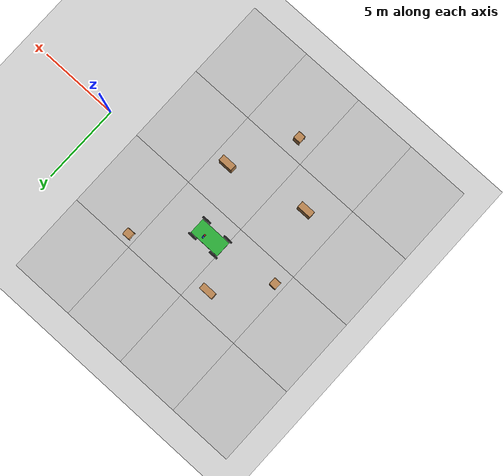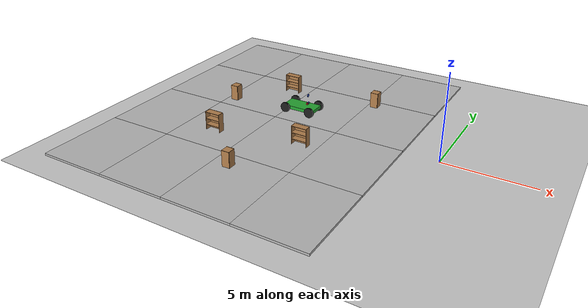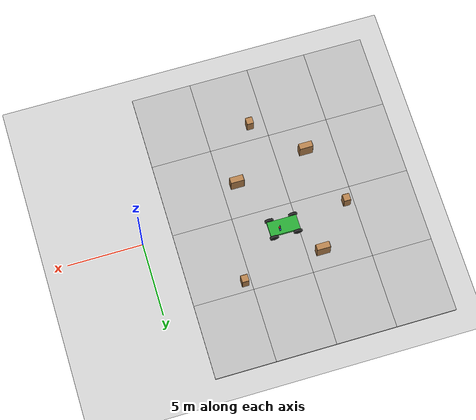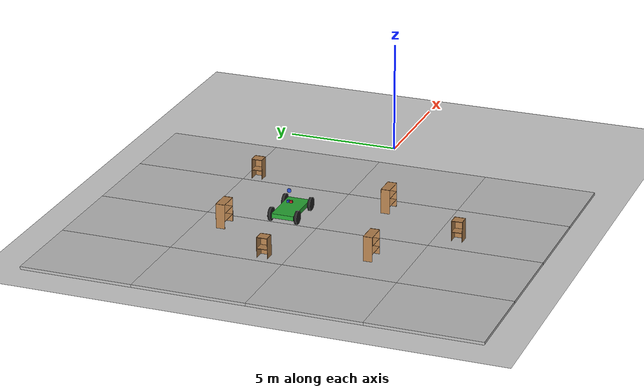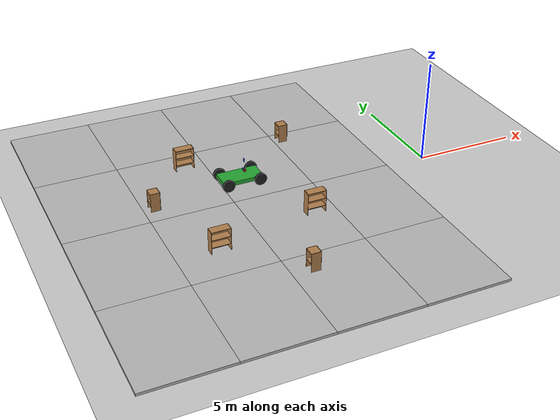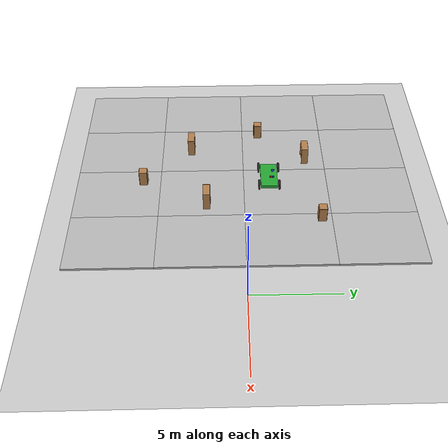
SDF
<sdf version="1.4">
 <world name="default">
  <model name="ground_plane">
   <static>1</static>
   <link name="link">
    <collision name="collision">
     <geometry><plane><normal>0 0 1</normal><size>100 100</size></plane></geometry>
     <surface><friction><ode><mu>100</mu><mu2>50</mu2></ode></friction></surface>
    </collision>
    <visual name="visual">
     <cast_shadows>0</cast_shadows>
     <geometry><plane><normal>0 0 1</normal><size>100 100</size></plane></geometry>
     <material>
      <script><uri>file://media/materials/scripts/gazebo.material</uri><name>Gazebo/Grey</name></script>
     </material>
    </visual>
    <velocity_decay><linear>0</linear><angular>0</angular></velocity_decay>
   </link>
  </model>
  <model name="mud_box">
   <static>1</static>
   <link name="link">
    <collision name="collision"><geometry><box><size>8 10 0.2</size></box></geometry></collision>
    <visual name="visual_1">
     <pose>-2 2.5 0 0 -0 0</pose>
     <cast_shadows>0</cast_shadows>
     <geometry><box><size>4 5 0.2</size></box></geometry>
     <material>
      <script>
       <uri>model://mud_box/materials/scripts</uri>
       <uri>model://mud_box/materials/textures</uri>
       <name>vrc/mud</name>
      </script>
     </material>
    </visual>
    <visual name="visual_2">
     <pose>2 2.5 0 0 -0 0</pose>
     <cast_shadows>0</cast_shadows>
     <geometry><box><size>4 5 0.2</size></box></geometry>
     <material>
      <script>
       <uri>model://mud_box/materials/scripts</uri>
       <uri>model://mud_box/materials/textures</uri>
       <name>vrc/mud</name>
      </script>
     </material>
    </visual>
    <visual name="visual_3">
     <pose>2 -2.5 0 0 -0 0</pose>
     <cast_shadows>0</cast_shadows>
     <geometry><box><size>4 5 0.2</size></box></geometry>
     <material>
      <script>
       <uri>model://mud_box/materials/scripts</uri>
       <uri>model://mud_box/materials/textures</uri>
       <name>vrc/mud</name>
      </script>
     </material>
    </visual>
    <visual name="visual_4">
     <pose>-2 -2.5 0 0 -0 0</pose>
     <cast_shadows>0</cast_shadows>
     <geometry><box><size>4 5 0.2</size></box></geometry>
     <material>
      <script>
       <uri>model://mud_box/materials/scripts</uri>
       <uri>model://mud_box/materials/textures</uri>
       <name>vrc/mud</name>
      </script>
     </material>
    </visual>
    <velocity_decay><linear>0</linear><angular>0</angular></velocity_decay>
   </link>
   <pose>-6 -5 0 0 -0 0</pose>
  </model>
  <model name="mud_box_0">
   <static>1</static>
   <link name="link">
    <collision name="collision"><geometry><box><size>8 10 0.2</size></box></geometry></collision>
    <visual name="visual_1">
     <pose>-2 2.5 0 0 -0 0</pose>
     <cast_shadows>0</cast_shadows>
     <geometry><box><size>4 5 0.2</size></box></geometry>
     <material>
      <script>
       <uri>model://mud_box/materials/scripts</uri>
       <uri>model://mud_box/materials/textures</uri>
       <name>vrc/mud</name>
      </script>
     </material>
    </visual>
    <visual name="visual_2">
     <pose>2 2.5 0 0 -0 0</pose>
     <cast_shadows>0</cast_shadows>
     <geometry><box><size>4 5 0.2</size></box></geometry>
     <material>
      <script>
       <uri>model://mud_box/materials/scripts</uri>
       <uri>model://mud_box/materials/textures</uri>
       <name>vrc/mud</name>
      </script>
     </material>
    </visual>
    <visual name="visual_3">
     <pose>2 -2.5 0 0 -0 0</pose>
     <cast_shadows>0</cast_shadows>
     <geometry><box><size>4 5 0.2</size></box></geometry>
     <material>
      <script>
       <uri>model://mud_box/materials/scripts</uri>
       <uri>model://mud_box/materials/textures</uri>
       <name>vrc/mud</name>
      </script>
     </material>
    </visual>
    <visual name="visual_4">
     <pose>-2 -2.5 0 0 -0 0</pose>
     <cast_shadows>0</cast_shadows>
     <geometry><box><size>4 5 0.2</size></box></geometry>
     <material>
      <script>
       <uri>model://mud_box/materials/scripts</uri>
       <uri>model://mud_box/materials/textures</uri>
       <name>vrc/mud</name>
      </script>
     </material>
    </visual>
    <velocity_decay><linear>0</linear><angular>0</angular></velocity_decay>
   </link>
   <pose>-6 5 0 0 -0 0</pose>
  </model>
  <model name="mud_box_5">
   <static>1</static>
   <link name="link">
    <collision name="collision"><geometry><box><size>8 10 0.2</size></box></geometry></collision>
    <visual name="visual_1">
     <pose>-2 2.5 0 0 -0 0</pose>
     <cast_shadows>0</cast_shadows>
     <geometry><box><size>4 5 0.2</size></box></geometry>
     <material>
      <script>
       <uri>model://mud_box/materials/scripts</uri>
       <uri>model://mud_box/materials/textures</uri>
       <name>vrc/mud</name>
      </script>
     </material>
    </visual>
    <visual name="visual_2">
     <pose>2 2.5 0 0 -0 0</pose>
     <cast_shadows>0</cast_shadows>
     <geometry><box><size>4 5 0.2</size></box></geometry>
     <material>
      <script>
       <uri>model://mud_box/materials/scripts</uri>
       <uri>model://mud_box/materials/textures</uri>
       <name>vrc/mud</name>
      </script>
     </material>
    </visual>
    <visual name="visual_3">
     <pose>2 -2.5 0 0 -0 0</pose>
     <cast_shadows>0</cast_shadows>
     <geometry><box><size>4 5 0.2</size></box></geometry>
     <material>
      <script>
       <uri>model://mud_box/materials/scripts</uri>
       <uri>model://mud_box/materials/textures</uri>
       <name>vrc/mud</name>
      </script>
     </material>
    </visual>
    <visual name="visual_4">
     <pose>-2 -2.5 0 0 -0 0</pose>
     <cast_shadows>0</cast_shadows>
     <geometry><box><size>4 5 0.2</size></box></geometry>
     <material>
      <script>
       <uri>model://mud_box/materials/scripts</uri>
       <uri>model://mud_box/materials/textures</uri>
       <name>vrc/mud</name>
      </script>
     </material>
    </visual>
    <velocity_decay><linear>0</linear><angular>0</angular></velocity_decay>
   </link>
   <pose>-14 5 0 0 -0 0</pose>
  </model>
  <model name="mud_box_6">
   <static>1</static>
   <link name="link">
    <collision name="collision"><geometry><box><size>8 10 0.2</size></box></geometry></collision>
    <visual name="visual_1">
     <pose>-2 2.5 0 0 -0 0</pose>
     <cast_shadows>0</cast_shadows>
     <geometry><box><size>4 5 0.2</size></box></geometry>
     <material>
      <script>
       <uri>model://mud_box/materials/scripts</uri>
       <uri>model://mud_box/materials/textures</uri>
       <name>vrc/mud</name>
      </script>
     </material>
    </visual>
    <visual name="visual_2">
     <pose>2 2.5 0 0 -0 0</pose>
     <cast_shadows>0</cast_shadows>
     <geometry><box><size>4 5 0.2</size></box></geometry>
     <material>
      <script>
       <uri>model://mud_box/materials/scripts</uri>
       <uri>model://mud_box/materials/textures</uri>
       <name>vrc/mud</name>
      </script>
     </material>
    </visual>
    <visual name="visual_3">
     <pose>2 -2.5 0 0 -0 0</pose>
     <cast_shadows>0</cast_shadows>
     <geometry><box><size>4 5 0.2</size></box></geometry>
     <material>
      <script>
       <uri>model://mud_box/materials/scripts</uri>
       <uri>model://mud_box/materials/textures</uri>
       <name>vrc/mud</name>
      </script>
     </material>
    </visual>
    <visual name="visual_4">
     <pose>-2 -2.5 0 0 -0 0</pose>
     <cast_shadows>0</cast_shadows>
     <geometry><box><size>4 5 0.2</size></box></geometry>
     <material>
      <script>
       <uri>model://mud_box/materials/scripts</uri>
       <uri>model://mud_box/materials/textures</uri>
       <name>vrc/mud</name>
      </script>
     </material>
    </visual>
    <velocity_decay><linear>0</linear><angular>0</angular></velocity_decay>
   </link>
   <pose>-14 -5 0 0 -0 0</pose>
  </model>
  <model name="cabinet">
   <static>1</static>
   <link name="cabinet_bottom_plate">
    <inertial>
     <pose>0 0 -1 0 -0 0</pose>
     <inertia><ixx>2.05</ixx><ixy>0</ixy><ixz>0</ixz><iyy>2.05</iyy><iyz>0</iyz><izz>2.05</izz></inertia>
     <mass>25</mass>
    </inertial>
    <collision name="cabinet_bottom_plate_geom">
     <pose>0 0 0.01 0 -0 0</pose>
     <geometry><box><size>0.45 0.45 0.02</size></box></geometry>
    </collision>
    <visual name="cabinet_bottom_plate_geom_visual">
     <pose>0 0 0.01 0 -0 0</pose>
     <geometry><box><size>0.45 0.45 0.02</size></box></geometry>
     <material>
      <script><uri>file://media/materials/scripts/gazebo.material</uri><name>Gazebo/Wood</name></script>
     </material>
    </visual>
    <collision name="cabinet_bottom_plate_geom_cabinet_back_plate">
     <pose>0.235 0 0.51 0 -0 0</pose>
     <geometry><box><size>0.02 0.45 1.02</size></box></geometry>
    </collision>
    <visual name="cabinet_bottom_plate_geom_cabinet_back_plate_visual">
     <pose>0.235 0 0.51 0 -0 0</pose>
     <geometry><box><size>0.02 0.45 1.02</size></box></geometry>
     <material>
      <script><uri>file://media/materials/scripts/gazebo.material</uri><name>Gazebo/Wood</name></script>
     </material>
    </visual>
    <collision name="cabinet_bottom_plate_geom_cabinet_left_plate">
     <pose>0 0.235 0.51 0 -0 0</pose>
     <geometry><box><size>0.45 0.02 1.02</size></box></geometry>
    </collision>
    <visual name="cabinet_bottom_plate_geom_cabinet_left_plate_visual">
     <pose>0 0.235 0.51 0 -0 0</pose>
     <geometry><box><size>0.45 0.02 1.02</size></box></geometry>
     <material>
      <script><uri>file://media/materials/scripts/gazebo.material</uri><name>Gazebo/Wood</name></script>
     </material>
    </visual>
    <collision name="cabinet_bottom_plate_geom_cabinet_middle_plate">
     <pose>0 0 0.51 0 -0 0</pose>
     <geometry><box><size>0.45 0.45 0.02</size></box></geometry>
    </collision>
    <visual name="cabinet_bottom_plate_geom_cabinet_middle_plate_visual">
     <pose>0 0 0.51 0 -0 0</pose>
     <geometry><box><size>0.45 0.45 0.02</size></box></geometry>
     <material>
      <script><uri>file://media/materials/scripts/gazebo.material</uri><name>Gazebo/Wood</name></script>
     </material>
    </visual>
    <collision name="cabinet_bottom_plate_geom_cabinet_right_plate">
     <pose>0 -0.235 0.51 0 -0 0</pose>
     <geometry><box><size>0.45 0.02 1.02</size></box></geometry>
    </collision>
    <visual name="cabinet_bottom_plate_geom_cabinet_right_plate_visual">
     <pose>0 -0.235 0.51 0 -0 0</pose>
     <geometry><box><size>0.45 0.02 1.02</size></box></geometry>
     <material>
      <script><uri>file://media/materials/scripts/gazebo.material</uri><name>Gazebo/Wood</name></script>
     </material>
    </visual>
    <collision name="cabinet_bottom_plate_geom_cabinet_top_plate">
     <pose>0 0 1.01 0 -0 0</pose>
     <geometry><box><size>0.45 0.45 0.02</size></box></geometry>
    </collision>
    <visual name="cabinet_bottom_plate_geom_cabinet_top_plate_visual">
     <pose>0 0 1.01 0 -0 0</pose>
     <geometry><box><size>0.45 0.45 0.02</size></box></geometry>
     <material>
      <script><uri>file://media/materials/scripts/gazebo.material</uri><name>Gazebo/Wood</name></script>
     </material>
    </visual>
    <velocity_decay><linear>0</linear><angular>0</angular></velocity_decay>
   </link>
   <pose>-13.4827 1 0 0 -0 0</pose>
  </model>
  <model name="cabinet_3">
   <static>1</static>
   <link name="cabinet_bottom_plate">
    <inertial>
     <pose>0 0 -1 0 -0 0</pose>
     <inertia><ixx>2.05</ixx><ixy>0</ixy><ixz>0</ixz><iyy>2.05</iyy><iyz>0</iyz><izz>2.05</izz></inertia>
     <mass>25</mass>
    </inertial>
    <collision name="cabinet_bottom_plate_geom">
     <pose>0 0 0.01 0 -0 0</pose>
     <geometry><box><size>0.45 0.45 0.02</size></box></geometry>
    </collision>
    <visual name="cabinet_bottom_plate_geom_visual">
     <pose>0 0 0.01 0 -0 0</pose>
     <geometry><box><size>0.45 0.45 0.02</size></box></geometry>
     <material>
      <script><uri>file://media/materials/scripts/gazebo.material</uri><name>Gazebo/Wood</name></script>
     </material>
    </visual>
    <collision name="cabinet_bottom_plate_geom_cabinet_back_plate">
     <pose>0.235 0 0.51 0 -0 0</pose>
     <geometry><box><size>0.02 0.45 1.02</size></box></geometry>
    </collision>
    <visual name="cabinet_bottom_plate_geom_cabinet_back_plate_visual">
     <pose>0.235 0 0.51 0 -0 0</pose>
     <geometry><box><size>0.02 0.45 1.02</size></box></geometry>
     <material>
      <script><uri>file://media/materials/scripts/gazebo.material</uri><name>Gazebo/Wood</name></script>
     </material>
    </visual>
    <collision name="cabinet_bottom_plate_geom_cabinet_left_plate">
     <pose>0 0.235 0.51 0 -0 0</pose>
     <geometry><box><size>0.45 0.02 1.02</size></box></geometry>
    </collision>
    <visual name="cabinet_bottom_plate_geom_cabinet_left_plate_visual">
     <pose>0 0.235 0.51 0 -0 0</pose>
     <geometry><box><size>0.45 0.02 1.02</size></box></geometry>
     <material>
      <script><uri>file://media/materials/scripts/gazebo.material</uri><name>Gazebo/Wood</name></script>
     </material>
    </visual>
    <collision name="cabinet_bottom_plate_geom_cabinet_middle_plate">
     <pose>0 0 0.51 0 -0 0</pose>
     <geometry><box><size>0.45 0.45 0.02</size></box></geometry>
    </collision>
    <visual name="cabinet_bottom_plate_geom_cabinet_middle_plate_visual">
     <pose>0 0 0.51 0 -0 0</pose>
     <geometry><box><size>0.45 0.45 0.02</size></box></geometry>
     <material>
      <script><uri>file://media/materials/scripts/gazebo.material</uri><name>Gazebo/Wood</name></script>
     </material>
    </visual>
    <collision name="cabinet_bottom_plate_geom_cabinet_right_plate">
     <pose>0 -0.235 0.51 0 -0 0</pose>
     <geometry><box><size>0.45 0.02 1.02</size></box></geometry>
    </collision>
    <visual name="cabinet_bottom_plate_geom_cabinet_right_plate_visual">
     <pose>0 -0.235 0.51 0 -0 0</pose>
     <geometry><box><size>0.45 0.02 1.02</size></box></geometry>
     <material>
      <script><uri>file://media/materials/scripts/gazebo.material</uri><name>Gazebo/Wood</name></script>
     </material>
    </visual>
    <collision name="cabinet_bottom_plate_geom_cabinet_top_plate">
     <pose>0 0 1.01 0 -0 0</pose>
     <geometry><box><size>0.45 0.45 0.02</size></box></geometry>
    </collision>
    <visual name="cabinet_bottom_plate_geom_cabinet_top_plate_visual">
     <pose>0 0 1.01 0 -0 0</pose>
     <geometry><box><size>0.45 0.45 0.02</size></box></geometry>
     <material>
      <script><uri>file://media/materials/scripts/gazebo.material</uri><name>Gazebo/Wood</name></script>
     </material>
    </visual>
    <velocity_decay><linear>0</linear><angular>0</angular></velocity_decay>
   </link>
   <pose>-9 -6 0 0 -0 0</pose>
  </model>
  <model name="cabinet_4">
   <static>1</static>
   <link name="cabinet_bottom_plate">
    <inertial>
     <pose>0 0 -1 0 -0 0</pose>
     <inertia><ixx>2.05</ixx><ixy>0</ixy><ixz>0</ixz><iyy>2.05</iyy><iyz>0</iyz><izz>2.05</izz></inertia>
     <mass>25</mass>
    </inertial>
    <collision name="cabinet_bottom_plate_geom">
     <pose>0 0 0.01 0 -0 0</pose>
     <geometry><box><size>0.45 0.45 0.02</size></box></geometry>
    </collision>
    <visual name="cabinet_bottom_plate_geom_visual">
     <pose>0 0 0.01 0 -0 0</pose>
     <geometry><box><size>0.45 0.45 0.02</size></box></geometry>
     <material>
      <script><uri>file://media/materials/scripts/gazebo.material</uri><name>Gazebo/Wood</name></script>
     </material>
    </visual>
    <collision name="cabinet_bottom_plate_geom_cabinet_back_plate">
     <pose>0.235 0 0.51 0 -0 0</pose>
     <geometry><box><size>0.02 0.45 1.02</size></box></geometry>
    </collision>
    <visual name="cabinet_bottom_plate_geom_cabinet_back_plate_visual">
     <pose>0.235 0 0.51 0 -0 0</pose>
     <geometry><box><size>0.02 0.45 1.02</size></box></geometry>
     <material>
      <script><uri>file://media/materials/scripts/gazebo.material</uri><name>Gazebo/Wood</name></script>
     </material>
    </visual>
    <collision name="cabinet_bottom_plate_geom_cabinet_left_plate">
     <pose>0 0.235 0.51 0 -0 0</pose>
     <geometry><box><size>0.45 0.02 1.02</size></box></geometry>
    </collision>
    <visual name="cabinet_bottom_plate_geom_cabinet_left_plate_visual">
     <pose>0 0.235 0.51 0 -0 0</pose>
     <geometry><box><size>0.45 0.02 1.02</size></box></geometry>
     <material>
      <script><uri>file://media/materials/scripts/gazebo.material</uri><name>Gazebo/Wood</name></script>
     </material>
    </visual>
    <collision name="cabinet_bottom_plate_geom_cabinet_middle_plate">
     <pose>0 0 0.51 0 -0 0</pose>
     <geometry><box><size>0.45 0.45 0.02</size></box></geometry>
    </collision>
    <visual name="cabinet_bottom_plate_geom_cabinet_middle_plate_visual">
     <pose>0 0 0.51 0 -0 0</pose>
     <geometry><box><size>0.45 0.45 0.02</size></box></geometry>
     <material>
      <script><uri>file://media/materials/scripts/gazebo.material</uri><name>Gazebo/Wood</name></script>
     </material>
    </visual>
    <collision name="cabinet_bottom_plate_geom_cabinet_right_plate">
     <pose>0 -0.235 0.51 0 -0 0</pose>
     <geometry><box><size>0.45 0.02 1.02</size></box></geometry>
    </collision>
    <visual name="cabinet_bottom_plate_geom_cabinet_right_plate_visual">
     <pose>0 -0.235 0.51 0 -0 0</pose>
     <geometry><box><size>0.45 0.02 1.02</size></box></geometry>
     <material>
      <script><uri>file://media/materials/scripts/gazebo.material</uri><name>Gazebo/Wood</name></script>
     </material>
    </visual>
    <collision name="cabinet_bottom_plate_geom_cabinet_top_plate">
     <pose>0 0 1.01 0 -0 0</pose>
     <geometry><box><size>0.45 0.45 0.02</size></box></geometry>
    </collision>
    <visual name="cabinet_bottom_plate_geom_cabinet_top_plate_visual">
     <pose>0 0 1.01 0 -0 0</pose>
     <geometry><box><size>0.45 0.45 0.02</size></box></geometry>
     <material>
      <script><uri>file://media/materials/scripts/gazebo.material</uri><name>Gazebo/Wood</name></script>
     </material>
    </visual>
    <velocity_decay><linear>0</linear><angular>0</angular></velocity_decay>
   </link>
   <pose>-5.58426 4.41881 0 0 -0 0</pose>
  </model>
  <model name="bookshelf">
   <static>1</static>
   <link name="link">
    <inertial><mass>1</mass></inertial>
    <collision name="back">
     <pose>0 0.005 0.6 0 -0 0</pose>
     <geometry><box><size>0.9 0.01 1.2</size></box></geometry>
    </collision>
    <visual name="visual1">
     <pose>0 0.005 0.6 0 -0 0</pose>
     <geometry><box><size>0.9 0.01 1.2</size></box></geometry>
     <material>
      <script><uri>file://media/materials/scripts/gazebo.material</uri><name>Gazebo/Wood</name></script>
     </material>
    </visual>
    <collision name="left_side">
     <pose>0.45 -0.195 0.6 0 -0 0</pose>
     <geometry><box><size>0.02 0.4 1.2</size></box></geometry>
    </collision>
    <visual name="visual2">
     <pose>0.45 -0.195 0.6 0 -0 0</pose>
     <geometry><box><size>0.02 0.4 1.2</size></box></geometry>
     <material>
      <script><uri>file://media/materials/scripts/gazebo.material</uri><name>Gazebo/Wood</name></script>
     </material>
    </visual>
    <collision name="right_side">
     <pose>-0.45 -0.195 0.6 0 -0 0</pose>
     <geometry><box><size>0.02 0.4 1.2</size></box></geometry>
    </collision>
    <visual name="visual3">
     <pose>-0.45 -0.195 0.6 0 -0 0</pose>
     <geometry><box><size>0.02 0.4 1.2</size></box></geometry>
     <material>
      <script><uri>file://media/materials/scripts/gazebo.material</uri><name>Gazebo/Wood</name></script>
     </material>
    </visual>
    <collision name="bottom">
     <pose>0 -0.195 0.03 0 -0 0</pose>
     <geometry><box><size>0.88 0.4 0.06</size></box></geometry>
    </collision>
    <visual name="visual4">
     <pose>0 -0.195 0.03 0 -0 0</pose>
     <geometry><box><size>0.88 0.4 0.06</size></box></geometry>
     <material>
      <script><uri>file://media/materials/scripts/gazebo.material</uri><name>Gazebo/Wood</name></script>
     </material>
    </visual>
    <collision name="top">
     <pose>0 -0.195 1.19 0 -0 0</pose>
     <geometry><box><size>0.88 0.4 0.02</size></box></geometry>
    </collision>
    <visual name="visual5">
     <pose>0 -0.195 1.19 0 -0 0</pose>
     <geometry><box><size>0.88 0.4 0.02</size></box></geometry>
     <material>
      <script><uri>file://media/materials/scripts/gazebo.material</uri><name>Gazebo/Wood</name></script>
     </material>
    </visual>
    <collision name="low_shelf">
     <pose>0 -0.195 0.43 0 -0 0</pose>
     <geometry><box><size>0.88 0.4 0.02</size></box></geometry>
    </collision>
    <visual name="visual6">
     <pose>0 -0.195 0.43 0 -0 0</pose>
     <geometry><box><size>0.88 0.4 0.02</size></box></geometry>
     <material>
      <script><uri>file://media/materials/scripts/gazebo.material</uri><name>Gazebo/Wood</name></script>
     </material>
    </visual>
    <collision name="high_shelf">
     <pose>0 -0.195 0.8 0 -0 0</pose>
     <geometry><box><size>0.88 0.4 0.02</size></box></geometry>
    </collision>
    <visual name="visual7">
     <pose>0 -0.195 0.8 0 -0 0</pose>
     <geometry><box><size>0.88 0.4 0.02</size></box></geometry>
     <material>
      <script><uri>file://media/materials/scripts/gazebo.material</uri><name>Gazebo/Wood</name></script>
     </material>
    </visual>
    <velocity_decay><linear>0</linear><angular>0</angular></velocity_decay>
   </link>
   <pose>-11 4 0 0 -0 0</pose>
  </model>
  <model name="bookshelf_0">
   <static>1</static>
   <link name="link">
    <inertial><mass>1</mass></inertial>
    <collision name="back">
     <pose>0 0.005 0.6 0 -0 0</pose>
     <geometry><box><size>0.9 0.01 1.2</size></box></geometry>
    </collision>
    <visual name="visual1">
     <pose>0 0.005 0.6 0 -0 0</pose>
     <geometry><box><size>0.9 0.01 1.2</size></box></geometry>
     <material>
      <script><uri>file://media/materials/scripts/gazebo.material</uri><name>Gazebo/Wood</name></script>
     </material>
    </visual>
    <collision name="left_side">
     <pose>0.45 -0.195 0.6 0 -0 0</pose>
     <geometry><box><size>0.02 0.4 1.2</size></box></geometry>
    </collision>
    <visual name="visual2">
     <pose>0.45 -0.195 0.6 0 -0 0</pose>
     <geometry><box><size>0.02 0.4 1.2</size></box></geometry>
     <material>
      <script><uri>file://media/materials/scripts/gazebo.material</uri><name>Gazebo/Wood</name></script>
     </material>
    </visual>
    <collision name="right_side">
     <pose>-0.45 -0.195 0.6 0 -0 0</pose>
     <geometry><box><size>0.02 0.4 1.2</size></box></geometry>
    </collision>
    <visual name="visual3">
     <pose>-0.45 -0.195 0.6 0 -0 0</pose>
     <geometry><box><size>0.02 0.4 1.2</size></box></geometry>
     <material>
      <script><uri>file://media/materials/scripts/gazebo.material</uri><name>Gazebo/Wood</name></script>
     </material>
    </visual>
    <collision name="bottom">
     <pose>0 -0.195 0.03 0 -0 0</pose>
     <geometry><box><size>0.88 0.4 0.06</size></box></geometry>
    </collision>
    <visual name="visual4">
     <pose>0 -0.195 0.03 0 -0 0</pose>
     <geometry><box><size>0.88 0.4 0.06</size></box></geometry>
     <material>
      <script><uri>file://media/materials/scripts/gazebo.material</uri><name>Gazebo/Wood</name></script>
     </material>
    </visual>
    <collision name="top">
     <pose>0 -0.195 1.19 0 -0 0</pose>
     <geometry><box><size>0.88 0.4 0.02</size></box></geometry>
    </collision>
    <visual name="visual5">
     <pose>0 -0.195 1.19 0 -0 0</pose>
     <geometry><box><size>0.88 0.4 0.02</size></box></geometry>
     <material>
      <script><uri>file://media/materials/scripts/gazebo.material</uri><name>Gazebo/Wood</name></script>
     </material>
    </visual>
    <collision name="low_shelf">
     <pose>0 -0.195 0.43 0 -0 0</pose>
     <geometry><box><size>0.88 0.4 0.02</size></box></geometry>
    </collision>
    <visual name="visual6">
     <pose>0 -0.195 0.43 0 -0 0</pose>
     <geometry><box><size>0.88 0.4 0.02</size></box></geometry>
     <material>
      <script><uri>file://media/materials/scripts/gazebo.material</uri><name>Gazebo/Wood</name></script>
     </material>
    </visual>
    <collision name="high_shelf">
     <pose>0 -0.195 0.8 0 -0 0</pose>
     <geometry><box><size>0.88 0.4 0.02</size></box></geometry>
    </collision>
    <visual name="visual7">
     <pose>0 -0.195 0.8 0 -0 0</pose>
     <geometry><box><size>0.88 0.4 0.02</size></box></geometry>
     <material>
      <script><uri>file://media/materials/scripts/gazebo.material</uri><name>Gazebo/Wood</name></script>
     </material>
    </visual>
    <velocity_decay><linear>0</linear><angular>0</angular></velocity_decay>
   </link>
   <pose>-12 -3 0 0 -0 0</pose>
  </model>
  <model name="bookshelf_1">
   <static>1</static>
   <link name="link">
    <inertial><mass>1</mass></inertial>
    <collision name="back">
     <pose>0 0.005 0.6 0 -0 0</pose>
     <geometry><box><size>0.9 0.01 1.2</size></box></geometry>
    </collision>
    <visual name="visual1">
     <pose>0 0.005 0.6 0 -0 0</pose>
     <geometry><box><size>0.9 0.01 1.2</size></box></geometry>
     <material>
      <script><uri>file://media/materials/scripts/gazebo.material</uri><name>Gazebo/Wood</name></script>
     </material>
    </visual>
    <collision name="left_side">
     <pose>0.45 -0.195 0.6 0 -0 0</pose>
     <geometry><box><size>0.02 0.4 1.2</size></box></geometry>
    </collision>
    <visual name="visual2">
     <pose>0.45 -0.195 0.6 0 -0 0</pose>
     <geometry><box><size>0.02 0.4 1.2</size></box></geometry>
     <material>
      <script><uri>file://media/materials/scripts/gazebo.material</uri><name>Gazebo/Wood</name></script>
     </material>
    </visual>
    <collision name="right_side">
     <pose>-0.45 -0.195 0.6 0 -0 0</pose>
     <geometry><box><size>0.02 0.4 1.2</size></box></geometry>
    </collision>
    <visual name="visual3">
     <pose>-0.45 -0.195 0.6 0 -0 0</pose>
     <geometry><box><size>0.02 0.4 1.2</size></box></geometry>
     <material>
      <script><uri>file://media/materials/scripts/gazebo.material</uri><name>Gazebo/Wood</name></script>
     </material>
    </visual>
    <collision name="bottom">
     <pose>0 -0.195 0.03 0 -0 0</pose>
     <geometry><box><size>0.88 0.4 0.06</size></box></geometry>
    </collision>
    <visual name="visual4">
     <pose>0 -0.195 0.03 0 -0 0</pose>
     <geometry><box><size>0.88 0.4 0.06</size></box></geometry>
     <material>
      <script><uri>file://media/materials/scripts/gazebo.material</uri><name>Gazebo/Wood</name></script>
     </material>
    </visual>
    <collision name="top">
     <pose>0 -0.195 1.19 0 -0 0</pose>
     <geometry><box><size>0.88 0.4 0.02</size></box></geometry>
    </collision>
    <visual name="visual5">
     <pose>0 -0.195 1.19 0 -0 0</pose>
     <geometry><box><size>0.88 0.4 0.02</size></box></geometry>
     <material>
      <script><uri>file://media/materials/scripts/gazebo.material</uri><name>Gazebo/Wood</name></script>
     </material>
    </visual>
    <collision name="low_shelf">
     <pose>0 -0.195 0.43 0 -0 0</pose>
     <geometry><box><size>0.88 0.4 0.02</size></box></geometry>
    </collision>
    <visual name="visual6">
     <pose>0 -0.195 0.43 0 -0 0</pose>
     <geometry><box><size>0.88 0.4 0.02</size></box></geometry>
     <material>
      <script><uri>file://media/materials/scripts/gazebo.material</uri><name>Gazebo/Wood</name></script>
     </material>
    </visual>
    <collision name="high_shelf">
     <pose>0 -0.195 0.8 0 -0 0</pose>
     <geometry><box><size>0.88 0.4 0.02</size></box></geometry>
    </collision>
    <visual name="visual7">
     <pose>0 -0.195 0.8 0 -0 0</pose>
     <geometry><box><size>0.88 0.4 0.02</size></box></geometry>
     <material>
      <script><uri>file://media/materials/scripts/gazebo.material</uri><name>Gazebo/Wood</name></script>
     </material>
    </visual>
    <velocity_decay><linear>0</linear><angular>0</angular></velocity_decay>
   </link>
   <pose>-7 -2 0 0 -0 0</pose>
  </model>
  <model name="car">
   <link name="chassis">
    <pose>0 0 0.3 0 -0 0</pose>
    <collision name="collision"><geometry><box><size>2 1 0.2</size></box></geometry></collision>
    <visual name="visual">
     <geometry><box><size>2 1 0.2</size></box></geometry>
     <material>
      <script><uri>file://media/materials/scripts/gazebo.material</uri><name>Gazebo/Green</name></script>
     </material>
    </visual>
    <velocity_decay><linear>0</linear><angular>0</angular></velocity_decay>
    <inertial>
     <inertia><ixx>1</ixx><ixy>0</ixy><ixz>0</ixz><iyy>1</iyy><iyz>0</iyz><izz>1</izz></inertia>
     <mass>1</mass>
    </inertial>
   </link>
   <link name="front_left_wheel">
    <pose>0.8 0.6 0.3 0 1.5707 1.5707</pose>
    <collision name="collision">
     <geometry><cylinder><radius>0.3</radius><length>0.1</length></cylinder></geometry>
    </collision>
    <visual name="visual">
     <geometry><cylinder><radius>0.3</radius><length>0.1</length></cylinder></geometry>
     <material>
      <script><uri>file://media/materials/scripts/gazebo.material</uri><name>Gazebo/Black</name></script>
     </material>
    </visual>
    <velocity_decay><linear>0</linear><angular>0</angular></velocity_decay>
    <inertial>
     <inertia><ixx>1</ixx><ixy>0</ixy><ixz>0</ixz><iyy>1</iyy><iyz>0</iyz><izz>1</izz></inertia>
     <mass>1</mass>
    </inertial>
   </link>
   <link name="front_right_wheel">
    <pose>0.8 -0.6 0.3 0 1.5707 1.5707</pose>
    <collision name="collision">
     <geometry><cylinder><radius>0.3</radius><length>0.1</length></cylinder></geometry>
    </collision>
    <visual name="visual">
     <geometry><cylinder><radius>0.3</radius><length>0.1</length></cylinder></geometry>
     <material>
      <script><uri>file://media/materials/scripts/gazebo.material</uri><name>Gazebo/Black</name></script>
     </material>
    </visual>
    <velocity_decay><linear>0</linear><angular>0</angular></velocity_decay>
    <inertial>
     <inertia><ixx>1</ixx><ixy>0</ixy><ixz>0</ixz><iyy>1</iyy><iyz>0</iyz><izz>1</izz></inertia>
     <mass>1</mass>
    </inertial>
   </link>
   <link name="back_right_wheel">
    <pose>-0.8 -0.6 0.3 0 1.5707 1.5707</pose>
    <collision name="collision">
     <geometry><cylinder><radius>0.3</radius><length>0.1</length></cylinder></geometry>
    </collision>
    <visual name="visual">
     <geometry><cylinder><radius>0.3</radius><length>0.1</length></cylinder></geometry>
     <material>
      <script><uri>file://media/materials/scripts/gazebo.material</uri><name>Gazebo/Black</name></script>
     </material>
    </visual>
    <velocity_decay><linear>0</linear><angular>0</angular></velocity_decay>
    <inertial>
     <inertia><ixx>1</ixx><ixy>0</ixy><ixz>0</ixz><iyy>1</iyy><iyz>0</iyz><izz>1</izz></inertia>
     <mass>1</mass>
    </inertial>
   </link>
   <link name="back_left_wheel">
    <pose>-0.8 0.6 0.3 0 1.5707 1.5707</pose>
    <collision name="collision">
     <geometry><cylinder><radius>0.3</radius><length>0.1</length></cylinder></geometry>
    </collision>
    <visual name="visual">
     <geometry><cylinder><radius>0.3</radius><length>0.1</length></cylinder></geometry>
     <material>
      <script><uri>file://media/materials/scripts/gazebo.material</uri><name>Gazebo/Black</name></script>
     </material>
    </visual>
    <velocity_decay><linear>0</linear><angular>0</angular></velocity_decay>
    <inertial>
     <inertia><ixx>1</ixx><ixy>0</ixy><ixz>0</ixz><iyy>1</iyy><iyz>0</iyz><izz>1</izz></inertia>
     <mass>1</mass>
    </inertial>
   </link>
   <link name="gas_pedal">
    <pose>0.3 0.1 0.5 0 -0 0</pose>
    <collision name="collision"><geometry><box><size>0.1 0.1 0.1</size></box></geometry></collision>
    <visual name="visual">
     <geometry><box><size>0.1 0.1 0.1</size></box></geometry>
     <material>
      <script><uri>file://media/materials/scripts/gazebo.material</uri><name>Gazebo/Red</name></script>
     </material>
    </visual>
    <velocity_decay><linear>0</linear><angular>0</angular></velocity_decay>
    <inertial>
     <inertia><ixx>1</ixx><ixy>0</ixy><ixz>0</ixz><iyy>1</iyy><iyz>0</iyz><izz>1</izz></inertia>
     <mass>1</mass>
    </inertial>
   </link>
   <link name="brake_pedal">
    <pose>0.3 0.25 0.5 0 -0 0</pose>
    <collision name="collision"><geometry><box><size>0.1 0.1 0.1</size></box></geometry></collision>
    <visual name="visual">
     <geometry><box><size>0.1 0.1 0.1</size></box></geometry>
     <material>
      <script><uri>file://media/materials/scripts/gazebo.material</uri><name>Gazebo/Blue</name></script>
     </material>
    </visual>
    <velocity_decay><linear>0</linear><angular>0</angular></velocity_decay>
    <inertial>
     <inertia><ixx>1</ixx><ixy>0</ixy><ixz>0</ixz><iyy>1</iyy><iyz>0</iyz><izz>1</izz></inertia>
     <mass>1</mass>
    </inertial>
   </link>
   <link name="steering_wheel">
    <pose>0.3 0.2 1 0 1.5707 0</pose>
    <collision name="collision">
     <geometry><cylinder><radius>0.1</radius><length>0.01</length></cylinder></geometry>
    </collision>
    <visual name="visual">
     <geometry><cylinder><radius>0.1</radius><length>0.01</length></cylinder></geometry>
     <material>
      <script><uri>file://media/materials/scripts/gazebo.material</uri><name>Gazebo/Blue</name></script>
     </material>
    </visual>
    <velocity_decay><linear>0</linear><angular>0</angular></velocity_decay>
    <inertial>
     <inertia><ixx>1</ixx><ixy>0</ixy><ixz>0</ixz><iyy>1</iyy><iyz>0</iyz><izz>1</izz></inertia>
     <mass>1</mass>
    </inertial>
   </link>
   <joint name="gas_joint" type="prismatic">
    <parent>chassis</parent>
    <child>gas_pedal</child>
    <axis><xyz>1 0 0</xyz><limit><lower>0</lower><upper>0.2</upper></limit></axis>
   </joint>
   <joint name="brake_joint" type="prismatic">
    <parent>chassis</parent>
    <child>brake_pedal</child>
    <axis><xyz>1 0 0</xyz><limit><lower>0</lower><upper>0.2</upper></limit></axis>
   </joint>
   <joint name="steering_joint" type="revolute">
    <parent>chassis</parent>
    <child>steering_wheel</child>
    <axis><xyz>1 0 0</xyz><limit><lower>-7.853</lower><upper>7.853</upper></limit></axis>
   </joint>
   <joint name="front_left_joint" type="revolute2">
    <parent>chassis</parent>
    <child>front_left_wheel</child>
    <axis><xyz>0 0 1</xyz><limit><lower>5.8107e-07</lower><upper>5.8107e-07</upper></limit></axis>
    <axis2><xyz>0 1 0</xyz></axis2>
    <physics><ode><limit><cfm>0</cfm><erp>0.9</erp></limit></ode></physics>
   </joint>
   <joint name="front_right_joint" type="revolute2">
    <parent>chassis</parent>
    <child>front_right_wheel</child>
    <axis><xyz>0 0 1</xyz><limit><lower>5.8107e-07</lower><upper>5.8107e-07</upper></limit></axis>
    <axis2><xyz>0 1 0</xyz></axis2>
    <physics><ode><limit><cfm>0</cfm><erp>0.9</erp></limit></ode></physics>
   </joint>
   <joint name="back_right_joint" type="revolute2">
    <parent>chassis</parent>
    <child>back_right_wheel</child>
    <axis><xyz>0 0 1</xyz><limit><lower>0</lower><upper>0</upper></limit></axis>
    <axis2><xyz>0 1 0</xyz></axis2>
    <physics><ode><limit><cfm>0</cfm><erp>0.9</erp></limit></ode></physics>
   </joint>
   <joint name="back_left_joint" type="revolute2">
    <parent>chassis</parent>
    <child>back_left_wheel</child>
    <axis><xyz>0 0 1</xyz><limit><lower>0</lower><upper>0</upper></limit></axis>
    <axis2><xyz>0 1 0</xyz></axis2>
    <physics><ode><limit><cfm>0</cfm><erp>0.9</erp></limit></ode></physics>
   </joint>
   <plugin name="vehicle" filename="libVehiclePlugin.so">
    <front_left>front_left_joint</front_left>
    <front_right>front_right_joint</front_right>
    <back_left>back_left_joint</back_left>
    <back_right>back_right_joint</back_right>
    <gas>gas_joint</gas>
    <brake>brake_joint</brake>
    <steering>steering_joint</steering>
    <front_power>10</front_power>
    <rear_power>10</rear_power>
    <tire_angle_range>0.5</tire_angle_range>
    <max_speed>10</max_speed>
    <aero_load>0.1</aero_load>
   </plugin>
   <pose>-9.05751 1.52336 0.097394 -0.000273 0.000919 -0.003129</pose>
   <static>0</static>
  </model>
 </world>
</sdf>
